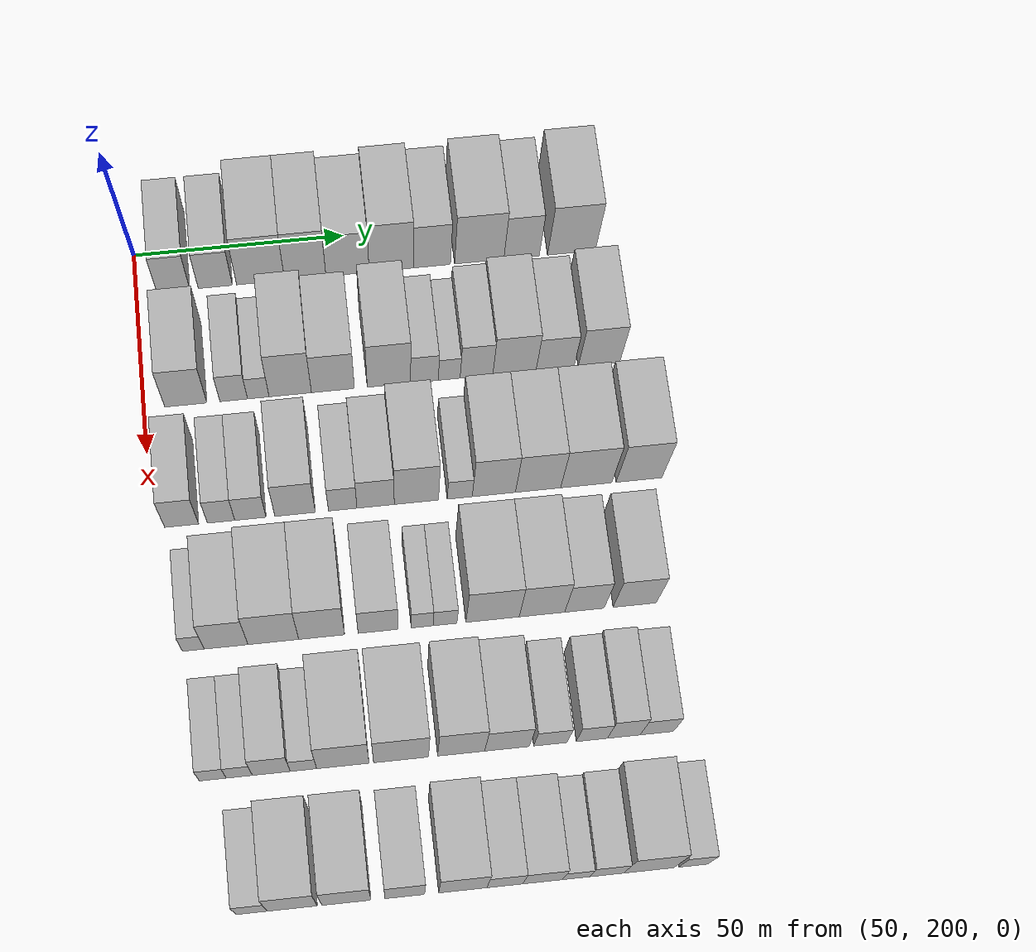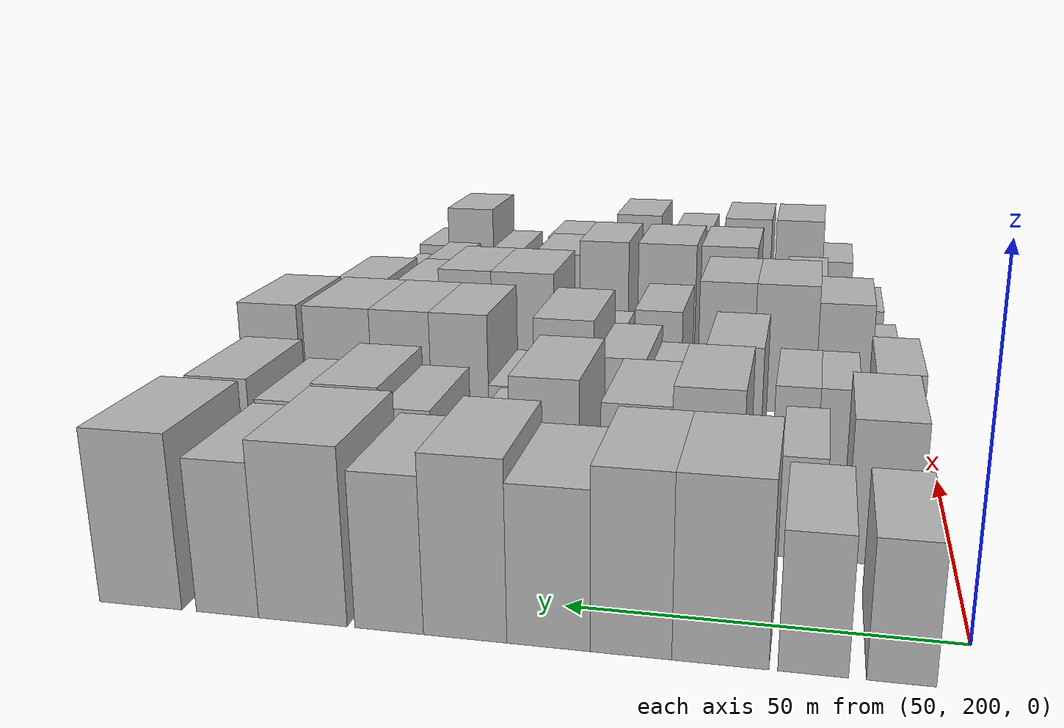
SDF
<sdf version="1.6">
 <world name="default">
  <model name="building_84">
   <static>1</static>
   <pose>50.0000 208.6425 0 0.000000 0.000000 0.000000</pose>
   <link name="link">
    <pose>0 0 9.00 0 0 0</pose>
    <collision name="collision"><geometry><box><size>20.0000 7.8044 18.0000</size></box></geometry></collision>
    <visual name="visual">
     <cast_shadows>0</cast_shadows>
     <geometry><box><size>20.0000 7.8044 18.0000</size></box></geometry>
     <material>
      <script>
       <uri>model://HANNAS_wall/materials/scripts</uri>
       <uri>model://HANNAS_wall/materials/textures</uri>
       <name>vrc/HANNAS_wall</name>
      </script>
     </material>
    </visual>
   </link>
  </model>
  <model name="building_85">
   <static>1</static>
   <pose>50.0000 218.5856 0 0.000000 0.000000 0.000000</pose>
   <link name="link">
    <pose>0 0 9.00 0 0 0</pose>
    <collision name="collision"><geometry><box><size>20.0000 8.0818 18.0000</size></box></geometry></collision>
    <visual name="visual">
     <cast_shadows>0</cast_shadows>
     <geometry><box><size>20.0000 8.0818 18.0000</size></box></geometry>
     <material>
      <script>
       <uri>model://HANNAS_wall/materials/scripts</uri>
       <uri>model://HANNAS_wall/materials/textures</uri>
       <name>vrc/HANNAS_wall</name>
      </script>
     </material>
    </visual>
   </link>
  </model>
  <model name="building_86">
   <static>1</static>
   <pose>50.0000 229.3139 0 0.000000 0.000000 0.000000</pose>
   <link name="link">
    <pose>0 0 12.00 0 0 0</pose>
    <collision name="collision"><geometry><box><size>20.0000 11.3750 24.0000</size></box></geometry></collision>
    <visual name="visual">
     <cast_shadows>0</cast_shadows>
     <geometry><box><size>20.0000 11.3750 24.0000</size></box></geometry>
     <material>
      <script>
       <uri>model://HANNAS_wall/materials/scripts</uri>
       <uri>model://HANNAS_wall/materials/textures</uri>
       <name>vrc/HANNAS_wall</name>
      </script>
     </material>
    </visual>
   </link>
  </model>
  <model name="building_87">
   <static>1</static>
   <pose>50.0000 239.8991 0 0.000000 0.000000 0.000000</pose>
   <link name="link">
    <pose>0 0 12.00 0 0 0</pose>
    <collision name="collision"><geometry><box><size>20.0000 9.7954 24.0000</size></box></geometry></collision>
    <visual name="visual">
     <cast_shadows>0</cast_shadows>
     <geometry><box><size>20.0000 9.7954 24.0000</size></box></geometry>
     <material>
      <script>
       <uri>model://HANNAS_wall/materials/scripts</uri>
       <uri>model://HANNAS_wall/materials/textures</uri>
       <name>vrc/HANNAS_wall</name>
      </script>
     </material>
    </visual>
   </link>
  </model>
  <model name="building_88">
   <static>1</static>
   <pose>50.0000 249.9228 0 0.000000 0.000000 0.000000</pose>
   <link name="link">
    <pose>0 0 10.50 0 0 0</pose>
    <collision name="collision"><geometry><box><size>20.0000 10.2521 21.0000</size></box></geometry></collision>
    <visual name="visual">
     <cast_shadows>0</cast_shadows>
     <geometry><box><size>20.0000 10.2521 21.0000</size></box></geometry>
     <material>
      <script>
       <uri>model://HANNAS_wall/materials/scripts</uri>
       <uri>model://HANNAS_wall/materials/textures</uri>
       <name>vrc/HANNAS_wall</name>
      </script>
     </material>
    </visual>
   </link>
  </model>
  <model name="building_89">
   <static>1</static>
   <pose>50.0000 260.3077 0 0.000000 0.000000 0.000000</pose>
   <link name="link">
    <pose>0 0 12.00 0 0 0</pose>
    <collision name="collision"><geometry><box><size>20.0000 10.5177 24.0000</size></box></geometry></collision>
    <visual name="visual">
     <cast_shadows>0</cast_shadows>
     <geometry><box><size>20.0000 10.5177 24.0000</size></box></geometry>
     <material>
      <script>
       <uri>model://HANNAS_wall/materials/scripts</uri>
       <uri>model://HANNAS_wall/materials/textures</uri>
       <name>vrc/HANNAS_wall</name>
      </script>
     </material>
    </visual>
   </link>
  </model>
  <model name="building_90">
   <static>1</static>
   <pose>50.0000 269.9991 0 0.000000 0.000000 0.000000</pose>
   <link name="link">
    <pose>0 0 10.50 0 0 0</pose>
    <collision name="collision"><geometry><box><size>20.0000 8.8651 21.0000</size></box></geometry></collision>
    <visual name="visual">
     <cast_shadows>0</cast_shadows>
     <geometry><box><size>20.0000 8.8651 21.0000</size></box></geometry>
     <material>
      <script>
       <uri>model://HANNAS_wall/materials/scripts</uri>
       <uri>model://HANNAS_wall/materials/textures</uri>
       <name>vrc/HANNAS_wall</name>
      </script>
     </material>
    </visual>
   </link>
  </model>
  <model name="building_91">
   <static>1</static>
   <pose>50.0000 281.3059 0 0.000000 0.000000 0.000000</pose>
   <link name="link">
    <pose>0 0 12.00 0 0 0</pose>
    <collision name="collision"><geometry><box><size>20.0000 11.7485 24.0000</size></box></geometry></collision>
    <visual name="visual">
     <cast_shadows>0</cast_shadows>
     <geometry><box><size>20.0000 11.7485 24.0000</size></box></geometry>
     <material>
      <script>
       <uri>model://HANNAS_wall/materials/scripts</uri>
       <uri>model://HANNAS_wall/materials/textures</uri>
       <name>vrc/HANNAS_wall</name>
      </script>
     </material>
    </visual>
   </link>
  </model>
  <model name="building_92">
   <static>1</static>
   <pose>50.0000 291.4070 0 0.000000 0.000000 0.000000</pose>
   <link name="link">
    <pose>0 0 10.50 0 0 0</pose>
    <collision name="collision"><geometry><box><size>20.0000 8.4536 21.0000</size></box></geometry></collision>
    <visual name="visual">
     <cast_shadows>0</cast_shadows>
     <geometry><box><size>20.0000 8.4536 21.0000</size></box></geometry>
     <material>
      <script>
       <uri>model://HANNAS_wall/materials/scripts</uri>
       <uri>model://HANNAS_wall/materials/textures</uri>
       <name>vrc/HANNAS_wall</name>
      </script>
     </material>
    </visual>
   </link>
  </model>
  <model name="building_93">
   <static>1</static>
   <pose>50.0000 303.3628 0 0.000000 0.000000 0.000000</pose>
   <link name="link">
    <pose>0 0 12.00 0 0 0</pose>
    <collision name="collision"><geometry><box><size>20.0000 11.4581 24.0000</size></box></geometry></collision>
    <visual name="visual">
     <cast_shadows>0</cast_shadows>
     <geometry><box><size>20.0000 11.4581 24.0000</size></box></geometry>
     <material>
      <script>
       <uri>model://HANNAS_wall/materials/scripts</uri>
       <uri>model://HANNAS_wall/materials/textures</uri>
       <name>vrc/HANNAS_wall</name>
      </script>
     </material>
    </visual>
   </link>
  </model>
  <model name="building_189">
   <static>1</static>
   <pose>79.0000 209.6705 0 0.000000 0.000000 0.000000</pose>
   <link name="link">
    <pose>0 0 10.50 0 0 0</pose>
    <collision name="collision"><geometry><box><size>20.0000 9.7549 21.0000</size></box></geometry></collision>
    <visual name="visual">
     <cast_shadows>0</cast_shadows>
     <geometry><box><size>20.0000 9.7549 21.0000</size></box></geometry>
     <material>
      <script>
       <uri>model://HANNAS_wall/materials/scripts</uri>
       <uri>model://HANNAS_wall/materials/textures</uri>
       <name>vrc/HANNAS_wall</name>
      </script>
     </material>
    </visual>
   </link>
  </model>
  <model name="building_190">
   <static>1</static>
   <pose>79.0000 220.7451 0 0.000000 0.000000 0.000000</pose>
   <link name="link">
    <pose>0 0 7.50 0 0 0</pose>
    <collision name="collision"><geometry><box><size>20.0000 6.3942 15.0000</size></box></geometry></collision>
    <visual name="visual">
     <cast_shadows>0</cast_shadows>
     <geometry><box><size>20.0000 6.3942 15.0000</size></box></geometry>
     <material>
      <script>
       <uri>model://HANNAS_wall/materials/scripts</uri>
       <uri>model://HANNAS_wall/materials/textures</uri>
       <name>vrc/HANNAS_wall</name>
      </script>
     </material>
    </visual>
   </link>
  </model>
  <model name="building_191">
   <static>1</static>
   <pose>79.0000 226.4468 0 0.000000 0.000000 0.000000</pose>
   <link name="link">
    <pose>0 0 6.00 0 0 0</pose>
    <collision name="collision"><geometry><box><size>20.0000 5.0092 12.0000</size></box></geometry></collision>
    <visual name="visual">
     <cast_shadows>0</cast_shadows>
     <geometry><box><size>20.0000 5.0092 12.0000</size></box></geometry>
     <material>
      <script>
       <uri>model://HANNAS_wall/materials/scripts</uri>
       <uri>model://HANNAS_wall/materials/textures</uri>
       <name>vrc/HANNAS_wall</name>
      </script>
     </material>
    </visual>
   </link>
  </model>
  <model name="building_192">
   <static>1</static>
   <pose>79.0000 233.8729 0 0.000000 0.000000 0.000000</pose>
   <link name="link">
    <pose>0 0 12.00 0 0 0</pose>
    <collision name="collision"><geometry><box><size>20.0000 9.8429 24.0000</size></box></geometry></collision>
    <visual name="visual">
     <cast_shadows>0</cast_shadows>
     <geometry><box><size>20.0000 9.8429 24.0000</size></box></geometry>
     <material>
      <script>
       <uri>model://HANNAS_wall/materials/scripts</uri>
       <uri>model://HANNAS_wall/materials/textures</uri>
       <name>vrc/HANNAS_wall</name>
      </script>
     </material>
    </visual>
   </link>
  </model>
  <model name="building_193">
   <static>1</static>
   <pose>79.0000 243.7833 0 0.000000 0.000000 0.000000</pose>
   <link name="link">
    <pose>0 0 10.50 0 0 0</pose>
    <collision name="collision"><geometry><box><size>20.0000 9.9779 21.0000</size></box></geometry></collision>
    <visual name="visual">
     <cast_shadows>0</cast_shadows>
     <geometry><box><size>20.0000 9.9779 21.0000</size></box></geometry>
     <material>
      <script>
       <uri>model://HANNAS_wall/materials/scripts</uri>
       <uri>model://HANNAS_wall/materials/textures</uri>
       <name>vrc/HANNAS_wall</name>
      </script>
     </material>
    </visual>
   </link>
  </model>
  <model name="building_194">
   <static>1</static>
   <pose>79.0000 256.8206 0 0.000000 0.000000 0.000000</pose>
   <link name="link">
    <pose>0 0 12.00 0 0 0</pose>
    <collision name="collision"><geometry><box><size>20.0000 10.0967 24.0000</size></box></geometry></collision>
    <visual name="visual">
     <cast_shadows>0</cast_shadows>
     <geometry><box><size>20.0000 10.0967 24.0000</size></box></geometry>
     <material>
      <script>
       <uri>model://HANNAS_wall/materials/scripts</uri>
       <uri>model://HANNAS_wall/materials/textures</uri>
       <name>vrc/HANNAS_wall</name>
      </script>
     </material>
    </visual>
   </link>
  </model>
  <model name="building_195">
   <static>1</static>
   <pose>79.0000 265.1065 0 0.000000 0.000000 0.000000</pose>
   <link name="link">
    <pose>0 0 7.50 0 0 0</pose>
    <collision name="collision"><geometry><box><size>20.0000 6.4752 15.0000</size></box></geometry></collision>
    <visual name="visual">
     <cast_shadows>0</cast_shadows>
     <geometry><box><size>20.0000 6.4752 15.0000</size></box></geometry>
     <material>
      <script>
       <uri>model://HANNAS_wall/materials/scripts</uri>
       <uri>model://HANNAS_wall/materials/textures</uri>
       <name>vrc/HANNAS_wall</name>
      </script>
     </material>
    </visual>
   </link>
  </model>
  <model name="building_196">
   <static>1</static>
   <pose>79.0000 270.8845 0 0.000000 0.000000 0.000000</pose>
   <link name="link">
    <pose>0 0 6.00 0 0 0</pose>
    <collision name="collision"><geometry><box><size>20.0000 5.0808 12.0000</size></box></geometry></collision>
    <visual name="visual">
     <cast_shadows>0</cast_shadows>
     <geometry><box><size>20.0000 5.0808 12.0000</size></box></geometry>
     <material>
      <script>
       <uri>model://HANNAS_wall/materials/scripts</uri>
       <uri>model://HANNAS_wall/materials/textures</uri>
       <name>vrc/HANNAS_wall</name>
      </script>
     </material>
    </visual>
   </link>
  </model>
  <model name="building_197">
   <static>1</static>
   <pose>79.0000 277.2413 0 0.000000 0.000000 0.000000</pose>
   <link name="link">
    <pose>0 0 9.00 0 0 0</pose>
    <collision name="collision"><geometry><box><size>20.0000 7.6327 18.0000</size></box></geometry></collision>
    <visual name="visual">
     <cast_shadows>0</cast_shadows>
     <geometry><box><size>20.0000 7.6327 18.0000</size></box></geometry>
     <material>
      <script>
       <uri>model://HANNAS_wall/materials/scripts</uri>
       <uri>model://HANNAS_wall/materials/textures</uri>
       <name>vrc/HANNAS_wall</name>
      </script>
     </material>
    </visual>
   </link>
  </model>
  <model name="building_198">
   <static>1</static>
   <pose>79.0000 286.1260 0 0.000000 0.000000 0.000000</pose>
   <link name="link">
    <pose>0 0 10.50 0 0 0</pose>
    <collision name="collision"><geometry><box><size>20.0000 10.1367 21.0000</size></box></geometry></collision>
    <visual name="visual">
     <cast_shadows>0</cast_shadows>
     <geometry><box><size>20.0000 10.1367 21.0000</size></box></geometry>
     <material>
      <script>
       <uri>model://HANNAS_wall/materials/scripts</uri>
       <uri>model://HANNAS_wall/materials/textures</uri>
       <name>vrc/HANNAS_wall</name>
      </script>
     </material>
    </visual>
   </link>
  </model>
  <model name="building_199">
   <static>1</static>
   <pose>79.0000 295.6314 0 0.000000 0.000000 0.000000</pose>
   <link name="link">
    <pose>0 0 9.00 0 0 0</pose>
    <collision name="collision"><geometry><box><size>20.0000 8.8742 18.0000</size></box></geometry></collision>
    <visual name="visual">
     <cast_shadows>0</cast_shadows>
     <geometry><box><size>20.0000 8.8742 18.0000</size></box></geometry>
     <material>
      <script>
       <uri>model://HANNAS_wall/materials/scripts</uri>
       <uri>model://HANNAS_wall/materials/textures</uri>
       <name>vrc/HANNAS_wall</name>
      </script>
     </material>
    </visual>
   </link>
  </model>
  <model name="building_200">
   <static>1</static>
   <pose>79.0000 305.9397 0 0.000000 0.000000 0.000000</pose>
   <link name="link">
    <pose>0 0 10.50 0 0 0</pose>
    <collision name="collision"><geometry><box><size>20.0000 9.7422 21.0000</size></box></geometry></collision>
    <visual name="visual">
     <cast_shadows>0</cast_shadows>
     <geometry><box><size>20.0000 9.7422 21.0000</size></box></geometry>
     <material>
      <script>
       <uri>model://HANNAS_wall/materials/scripts</uri>
       <uri>model://HANNAS_wall/materials/textures</uri>
       <name>vrc/HANNAS_wall</name>
      </script>
     </material>
    </visual>
   </link>
  </model>
  <model name="building_296">
   <static>1</static>
   <pose>108.0000 206.7710 0 0.000000 0.000000 0.000000</pose>
   <link name="link">
    <pose>0 0 9.00 0 0 0</pose>
    <collision name="collision"><geometry><box><size>20.0000 7.6914 18.0000</size></box></geometry></collision>
    <visual name="visual">
     <cast_shadows>0</cast_shadows>
     <geometry><box><size>20.0000 7.6914 18.0000</size></box></geometry>
     <material>
      <script>
       <uri>model://HANNAS_wall/materials/scripts</uri>
       <uri>model://HANNAS_wall/materials/textures</uri>
       <name>vrc/HANNAS_wall</name>
      </script>
     </material>
    </visual>
   </link>
  </model>
  <model name="building_297">
   <static>1</static>
   <pose>108.0000 215.7208 0 0.000000 0.000000 0.000000</pose>
   <link name="link">
    <pose>0 0 7.50 0 0 0</pose>
    <collision name="collision"><geometry><box><size>20.0000 6.2083 15.0000</size></box></geometry></collision>
    <visual name="visual">
     <cast_shadows>0</cast_shadows>
     <geometry><box><size>20.0000 6.2083 15.0000</size></box></geometry>
     <material>
      <script>
       <uri>model://HANNAS_wall/materials/scripts</uri>
       <uri>model://HANNAS_wall/materials/textures</uri>
       <name>vrc/HANNAS_wall</name>
      </script>
     </material>
    </visual>
   </link>
  </model>
  <model name="building_298">
   <static>1</static>
   <pose>108.0000 222.3732 0 0.000000 0.000000 0.000000</pose>
   <link name="link">
    <pose>0 0 7.50 0 0 0</pose>
    <collision name="collision"><geometry><box><size>20.0000 7.0965 15.0000</size></box></geometry></collision>
    <visual name="visual">
     <cast_shadows>0</cast_shadows>
     <geometry><box><size>20.0000 7.0965 15.0000</size></box></geometry>
     <material>
      <script>
       <uri>model://HANNAS_wall/materials/scripts</uri>
       <uri>model://HANNAS_wall/materials/textures</uri>
       <name>vrc/HANNAS_wall</name>
      </script>
     </material>
    </visual>
   </link>
  </model>
  <model name="building_299">
   <static>1</static>
   <pose>108.0000 232.5104 0 0.000000 0.000000 0.000000</pose>
   <link name="link">
    <pose>0 0 10.50 0 0 0</pose>
    <collision name="collision"><geometry><box><size>20.0000 9.1779 21.0000</size></box></geometry></collision>
    <visual name="visual">
     <cast_shadows>0</cast_shadows>
     <geometry><box><size>20.0000 9.1779 21.0000</size></box></geometry>
     <material>
      <script>
       <uri>model://HANNAS_wall/materials/scripts</uri>
       <uri>model://HANNAS_wall/materials/textures</uri>
       <name>vrc/HANNAS_wall</name>
      </script>
     </material>
    </visual>
   </link>
  </model>
  <model name="building_300">
   <static>1</static>
   <pose>108.0000 243.3348 0 0.000000 0.000000 0.000000</pose>
   <link name="link">
    <pose>0 0 7.50 0 0 0</pose>
    <collision name="collision"><geometry><box><size>20.0000 6.4710 15.0000</size></box></geometry></collision>
    <visual name="visual">
     <cast_shadows>0</cast_shadows>
     <geometry><box><size>20.0000 6.4710 15.0000</size></box></geometry>
     <material>
      <script>
       <uri>model://HANNAS_wall/materials/scripts</uri>
       <uri>model://HANNAS_wall/materials/textures</uri>
       <name>vrc/HANNAS_wall</name>
      </script>
     </material>
    </visual>
   </link>
  </model>
  <model name="building_301">
   <static>1</static>
   <pose>108.0000 250.8264 0 0.000000 0.000000 0.000000</pose>
   <link name="link">
    <pose>0 0 9.00 0 0 0</pose>
    <collision name="collision"><geometry><box><size>20.0000 8.5123 18.0000</size></box></geometry></collision>
    <visual name="visual">
     <cast_shadows>0</cast_shadows>
     <geometry><box><size>20.0000 8.5123 18.0000</size></box></geometry>
     <material>
      <script>
       <uri>model://HANNAS_wall/materials/scripts</uri>
       <uri>model://HANNAS_wall/materials/textures</uri>
       <name>vrc/HANNAS_wall</name>
      </script>
     </material>
    </visual>
   </link>
  </model>
  <model name="building_302">
   <static>1</static>
   <pose>108.0000 260.1280 0 0.000000 0.000000 0.000000</pose>
   <link name="link">
    <pose>0 0 12.00 0 0 0</pose>
    <collision name="collision"><geometry><box><size>20.0000 10.0909 24.0000</size></box></geometry></collision>
    <visual name="visual">
     <cast_shadows>0</cast_shadows>
     <geometry><box><size>20.0000 10.0909 24.0000</size></box></geometry>
     <material>
      <script>
       <uri>model://HANNAS_wall/materials/scripts</uri>
       <uri>model://HANNAS_wall/materials/textures</uri>
       <name>vrc/HANNAS_wall</name>
      </script>
     </material>
    </visual>
   </link>
  </model>
  <model name="building_303">
   <static>1</static>
   <pose>108.0000 270.0269 0 0.000000 0.000000 0.000000</pose>
   <link name="link">
    <pose>0 0 6.00 0 0 0</pose>
    <collision name="collision"><geometry><box><size>20.0000 5.7069 12.0000</size></box></geometry></collision>
    <visual name="visual">
     <cast_shadows>0</cast_shadows>
     <geometry><box><size>20.0000 5.7069 12.0000</size></box></geometry>
     <material>
      <script>
       <uri>model://HANNAS_wall/materials/scripts</uri>
       <uri>model://HANNAS_wall/materials/textures</uri>
       <name>vrc/HANNAS_wall</name>
      </script>
     </material>
    </visual>
   </link>
  </model>
  <model name="building_304">
   <static>1</static>
   <pose>108.0000 277.8315 0 0.000000 0.000000 0.000000</pose>
   <link name="link">
    <pose>0 0 12.00 0 0 0</pose>
    <collision name="collision"><geometry><box><size>20.0000 9.9023 24.0000</size></box></geometry></collision>
    <visual name="visual">
     <cast_shadows>0</cast_shadows>
     <geometry><box><size>20.0000 9.9023 24.0000</size></box></geometry>
     <material>
      <script>
       <uri>model://HANNAS_wall/materials/scripts</uri>
       <uri>model://HANNAS_wall/materials/textures</uri>
       <name>vrc/HANNAS_wall</name>
      </script>
     </material>
    </visual>
   </link>
  </model>
  <model name="building_305">
   <static>1</static>
   <pose>108.0000 287.9648 0 0.000000 0.000000 0.000000</pose>
   <link name="link">
    <pose>0 0 12.00 0 0 0</pose>
    <collision name="collision"><geometry><box><size>20.0000 10.3641 24.0000</size></box></geometry></collision>
    <visual name="visual">
     <cast_shadows>0</cast_shadows>
     <geometry><box><size>20.0000 10.3641 24.0000</size></box></geometry>
     <material>
      <script>
       <uri>model://HANNAS_wall/materials/scripts</uri>
       <uri>model://HANNAS_wall/materials/textures</uri>
       <name>vrc/HANNAS_wall</name>
      </script>
     </material>
    </visual>
   </link>
  </model>
  <model name="building_306">
   <static>1</static>
   <pose>108.0000 299.0177 0 0.000000 0.000000 0.000000</pose>
   <link name="link">
    <pose>0 0 12.00 0 0 0</pose>
    <collision name="collision"><geometry><box><size>20.0000 11.7417 24.0000</size></box></geometry></collision>
    <visual name="visual">
     <cast_shadows>0</cast_shadows>
     <geometry><box><size>20.0000 11.7417 24.0000</size></box></geometry>
     <material>
      <script>
       <uri>model://HANNAS_wall/materials/scripts</uri>
       <uri>model://HANNAS_wall/materials/textures</uri>
       <name>vrc/HANNAS_wall</name>
      </script>
     </material>
    </visual>
   </link>
  </model>
  <model name="building_307">
   <static>1</static>
   <pose>108.0000 311.1563 0 0.000000 0.000000 0.000000</pose>
   <link name="link">
    <pose>0 0 12.00 0 0 0</pose>
    <collision name="collision"><geometry><box><size>20.0000 10.5354 24.0000</size></box></geometry></collision>
    <visual name="visual">
     <cast_shadows>0</cast_shadows>
     <geometry><box><size>20.0000 10.5354 24.0000</size></box></geometry>
     <material>
      <script>
       <uri>model://HANNAS_wall/materials/scripts</uri>
       <uri>model://HANNAS_wall/materials/textures</uri>
       <name>vrc/HANNAS_wall</name>
      </script>
     </material>
    </visual>
   </link>
  </model>
  <model name="building_409">
   <static>1</static>
   <pose>137.0000 207.4290 0 0.000000 0.000000 0.000000</pose>
   <link name="link">
    <pose>0 0 6.00 0 0 0</pose>
    <collision name="collision"><geometry><box><size>20.0000 4.8108 12.0000</size></box></geometry></collision>
    <visual name="visual">
     <cast_shadows>0</cast_shadows>
     <geometry><box><size>20.0000 4.8108 12.0000</size></box></geometry>
     <material>
      <script>
       <uri>model://HANNAS_wall/materials/scripts</uri>
       <uri>model://HANNAS_wall/materials/textures</uri>
       <name>vrc/HANNAS_wall</name>
      </script>
     </material>
    </visual>
   </link>
  </model>
  <model name="building_410">
   <static>1</static>
   <pose>137.0000 214.6970 0 0.000000 0.000000 0.000000</pose>
   <link name="link">
    <pose>0 0 10.50 0 0 0</pose>
    <collision name="collision"><geometry><box><size>20.0000 9.7251 21.0000</size></box></geometry></collision>
    <visual name="visual">
     <cast_shadows>0</cast_shadows>
     <geometry><box><size>20.0000 9.7251 21.0000</size></box></geometry>
     <material>
      <script>
       <uri>model://HANNAS_wall/materials/scripts</uri>
       <uri>model://HANNAS_wall/materials/textures</uri>
       <name>vrc/HANNAS_wall</name>
      </script>
     </material>
    </visual>
   </link>
  </model>
  <model name="building_411">
   <static>1</static>
   <pose>137.0000 225.1797 0 0.000000 0.000000 0.000000</pose>
   <link name="link">
    <pose>0 0 12.00 0 0 0</pose>
    <collision name="collision"><geometry><box><size>20.0000 11.2403 24.0000</size></box></geometry></collision>
    <visual name="visual">
     <cast_shadows>0</cast_shadows>
     <geometry><box><size>20.0000 11.2403 24.0000</size></box></geometry>
     <material>
      <script>
       <uri>model://HANNAS_wall/materials/scripts</uri>
       <uri>model://HANNAS_wall/materials/textures</uri>
       <name>vrc/HANNAS_wall</name>
      </script>
     </material>
    </visual>
   </link>
  </model>
  <model name="building_412">
   <static>1</static>
   <pose>137.0000 235.9193 0 0.000000 0.000000 0.000000</pose>
   <link name="link">
    <pose>0 0 12.00 0 0 0</pose>
    <collision name="collision"><geometry><box><size>20.0000 10.2388 24.0000</size></box></geometry></collision>
    <visual name="visual">
     <cast_shadows>0</cast_shadows>
     <geometry><box><size>20.0000 10.2388 24.0000</size></box></geometry>
     <material>
      <script>
       <uri>model://HANNAS_wall/materials/scripts</uri>
       <uri>model://HANNAS_wall/materials/textures</uri>
       <name>vrc/HANNAS_wall</name>
      </script>
     </material>
    </visual>
   </link>
  </model>
  <model name="building_413">
   <static>1</static>
   <pose>137.0000 248.4658 0 0.000000 0.000000 0.000000</pose>
   <link name="link">
    <pose>0 0 9.00 0 0 0</pose>
    <collision name="collision"><geometry><box><size>20.0000 8.8541 18.0000</size></box></geometry></collision>
    <visual name="visual">
     <cast_shadows>0</cast_shadows>
     <geometry><box><size>20.0000 8.8541 18.0000</size></box></geometry>
     <material>
      <script>
       <uri>model://HANNAS_wall/materials/scripts</uri>
       <uri>model://HANNAS_wall/materials/textures</uri>
       <name>vrc/HANNAS_wall</name>
      </script>
     </material>
    </visual>
   </link>
  </model>
  <model name="building_414">
   <static>1</static>
   <pose>137.0000 258.3368 0 0.000000 0.000000 0.000000</pose>
   <link name="link">
    <pose>0 0 6.00 0 0 0</pose>
    <collision name="collision"><geometry><box><size>20.0000 4.8878 12.0000</size></box></geometry></collision>
    <visual name="visual">
     <cast_shadows>0</cast_shadows>
     <geometry><box><size>20.0000 4.8878 12.0000</size></box></geometry>
     <material>
      <script>
       <uri>model://HANNAS_wall/materials/scripts</uri>
       <uri>model://HANNAS_wall/materials/textures</uri>
       <name>vrc/HANNAS_wall</name>
      </script>
     </material>
    </visual>
   </link>
  </model>
  <model name="building_415">
   <static>1</static>
   <pose>137.0000 263.4349 0 0.000000 0.000000 0.000000</pose>
   <link name="link">
    <pose>0 0 6.00 0 0 0</pose>
    <collision name="collision"><geometry><box><size>20.0000 5.3084 12.0000</size></box></geometry></collision>
    <visual name="visual">
     <cast_shadows>0</cast_shadows>
     <geometry><box><size>20.0000 5.3084 12.0000</size></box></geometry>
     <material>
      <script>
       <uri>model://HANNAS_wall/materials/scripts</uri>
       <uri>model://HANNAS_wall/materials/textures</uri>
       <name>vrc/HANNAS_wall</name>
      </script>
     </material>
    </visual>
   </link>
  </model>
  <model name="building_416">
   <static>1</static>
   <pose>137.0000 274.0593 0 0.000000 0.000000 0.000000</pose>
   <link name="link">
    <pose>0 0 12.00 0 0 0</pose>
    <collision name="collision"><geometry><box><size>20.0000 11.9404 24.0000</size></box></geometry></collision>
    <visual name="visual">
     <cast_shadows>0</cast_shadows>
     <geometry><box><size>20.0000 11.9404 24.0000</size></box></geometry>
     <material>
      <script>
       <uri>model://HANNAS_wall/materials/scripts</uri>
       <uri>model://HANNAS_wall/materials/textures</uri>
       <name>vrc/HANNAS_wall</name>
      </script>
     </material>
    </visual>
   </link>
  </model>
  <model name="building_417">
   <static>1</static>
   <pose>137.0000 285.1350 0 0.000000 0.000000 0.000000</pose>
   <link name="link">
    <pose>0 0 12.00 0 0 0</pose>
    <collision name="collision"><geometry><box><size>20.0000 10.2109 24.0000</size></box></geometry></collision>
    <visual name="visual">
     <cast_shadows>0</cast_shadows>
     <geometry><box><size>20.0000 10.2109 24.0000</size></box></geometry>
     <material>
      <script>
       <uri>model://HANNAS_wall/materials/scripts</uri>
       <uri>model://HANNAS_wall/materials/textures</uri>
       <name>vrc/HANNAS_wall</name>
      </script>
     </material>
    </visual>
   </link>
  </model>
  <model name="building_418">
   <static>1</static>
   <pose>137.0000 294.6801 0 0.000000 0.000000 0.000000</pose>
   <link name="link">
    <pose>0 0 10.50 0 0 0</pose>
    <collision name="collision"><geometry><box><size>20.0000 8.8795 21.0000</size></box></geometry></collision>
    <visual name="visual">
     <cast_shadows>0</cast_shadows>
     <geometry><box><size>20.0000 8.8795 21.0000</size></box></geometry>
     <material>
      <script>
       <uri>model://HANNAS_wall/materials/scripts</uri>
       <uri>model://HANNAS_wall/materials/textures</uri>
       <name>vrc/HANNAS_wall</name>
      </script>
     </material>
    </visual>
   </link>
  </model>
  <model name="building_419">
   <static>1</static>
   <pose>137.0000 305.9805 0 0.000000 0.000000 0.000000</pose>
   <link name="link">
    <pose>0 0 10.50 0 0 0</pose>
    <collision name="collision"><geometry><box><size>20.0000 9.7212 21.0000</size></box></geometry></collision>
    <visual name="visual">
     <cast_shadows>0</cast_shadows>
     <geometry><box><size>20.0000 9.7212 21.0000</size></box></geometry>
     <material>
      <script>
       <uri>model://HANNAS_wall/materials/scripts</uri>
       <uri>model://HANNAS_wall/materials/textures</uri>
       <name>vrc/HANNAS_wall</name>
      </script>
     </material>
    </visual>
   </link>
  </model>
  <model name="building_526">
   <static>1</static>
   <pose>166.0000 209.6998 0 0.000000 0.000000 0.000000</pose>
   <link name="link">
    <pose>0 0 6.00 0 0 0</pose>
    <collision name="collision"><geometry><box><size>20.0000 5.8388 12.0000</size></box></geometry></collision>
    <visual name="visual">
     <cast_shadows>0</cast_shadows>
     <geometry><box><size>20.0000 5.8388 12.0000</size></box></geometry>
     <material>
      <script>
       <uri>model://HANNAS_wall/materials/scripts</uri>
       <uri>model://HANNAS_wall/materials/textures</uri>
       <name>vrc/HANNAS_wall</name>
      </script>
     </material>
    </visual>
   </link>
  </model>
  <model name="building_527">
   <static>1</static>
   <pose>166.0000 215.4416 0 0.000000 0.000000 0.000000</pose>
   <link name="link">
    <pose>0 0 6.00 0 0 0</pose>
    <collision name="collision"><geometry><box><size>20.0000 5.6448 12.0000</size></box></geometry></collision>
    <visual name="visual">
     <cast_shadows>0</cast_shadows>
     <geometry><box><size>20.0000 5.6448 12.0000</size></box></geometry>
     <material>
      <script>
       <uri>model://HANNAS_wall/materials/scripts</uri>
       <uri>model://HANNAS_wall/materials/textures</uri>
       <name>vrc/HANNAS_wall</name>
      </script>
     </material>
    </visual>
   </link>
  </model>
  <model name="building_528">
   <static>1</static>
   <pose>166.0000 222.3700 0 0.000000 0.000000 0.000000</pose>
   <link name="link">
    <pose>0 0 9.00 0 0 0</pose>
    <collision name="collision"><geometry><box><size>20.0000 8.2121 18.0000</size></box></geometry></collision>
    <visual name="visual">
     <cast_shadows>0</cast_shadows>
     <geometry><box><size>20.0000 8.2121 18.0000</size></box></geometry>
     <material>
      <script>
       <uri>model://HANNAS_wall/materials/scripts</uri>
       <uri>model://HANNAS_wall/materials/textures</uri>
       <name>vrc/HANNAS_wall</name>
      </script>
     </material>
    </visual>
   </link>
  </model>
  <model name="building_529">
   <static>1</static>
   <pose>166.0000 229.3432 0 0.000000 0.000000 0.000000</pose>
   <link name="link">
    <pose>0 0 6.00 0 0 0</pose>
    <collision name="collision"><geometry><box><size>20.0000 5.7342 12.0000</size></box></geometry></collision>
    <visual name="visual">
     <cast_shadows>0</cast_shadows>
     <geometry><box><size>20.0000 5.7342 12.0000</size></box></geometry>
     <material>
      <script>
       <uri>model://HANNAS_wall/materials/scripts</uri>
       <uri>model://HANNAS_wall/materials/textures</uri>
       <name>vrc/HANNAS_wall</name>
      </script>
     </material>
    </visual>
   </link>
  </model>
  <model name="building_530">
   <static>1</static>
   <pose>166.0000 237.9088 0 0.000000 0.000000 0.000000</pose>
   <link name="link">
    <pose>0 0 12.00 0 0 0</pose>
    <collision name="collision"><geometry><box><size>20.0000 11.3969 24.0000</size></box></geometry></collision>
    <visual name="visual">
     <cast_shadows>0</cast_shadows>
     <geometry><box><size>20.0000 11.3969 24.0000</size></box></geometry>
     <material>
      <script>
       <uri>model://HANNAS_wall/materials/scripts</uri>
       <uri>model://HANNAS_wall/materials/textures</uri>
       <name>vrc/HANNAS_wall</name>
      </script>
     </material>
    </visual>
   </link>
  </model>
  <model name="building_531">
   <static>1</static>
   <pose>166.0000 250.5976 0 0.000000 0.000000 0.000000</pose>
   <link name="link">
    <pose>0 0 12.00 0 0 0</pose>
    <collision name="collision"><geometry><box><size>20.0000 11.9808 24.0000</size></box></geometry></collision>
    <visual name="visual">
     <cast_shadows>0</cast_shadows>
     <geometry><box><size>20.0000 11.9808 24.0000</size></box></geometry>
     <material>
      <script>
       <uri>model://HANNAS_wall/materials/scripts</uri>
       <uri>model://HANNAS_wall/materials/textures</uri>
       <name>vrc/HANNAS_wall</name>
      </script>
     </material>
    </visual>
   </link>
  </model>
  <model name="building_532">
   <static>1</static>
   <pose>166.0000 263.7345 0 0.000000 0.000000 0.000000</pose>
   <link name="link">
    <pose>0 0 12.00 0 0 0</pose>
    <collision name="collision"><geometry><box><size>20.0000 10.2930 24.0000</size></box></geometry></collision>
    <visual name="visual">
     <cast_shadows>0</cast_shadows>
     <geometry><box><size>20.0000 10.2930 24.0000</size></box></geometry>
     <material>
      <script>
       <uri>model://HANNAS_wall/materials/scripts</uri>
       <uri>model://HANNAS_wall/materials/textures</uri>
       <name>vrc/HANNAS_wall</name>
      </script>
     </material>
    </visual>
   </link>
  </model>
  <model name="building_533">
   <static>1</static>
   <pose>166.0000 273.7417 0 0.000000 0.000000 0.000000</pose>
   <link name="link">
    <pose>0 0 10.50 0 0 0</pose>
    <collision name="collision"><geometry><box><size>20.0000 9.7213 21.0000</size></box></geometry></collision>
    <visual name="visual">
     <cast_shadows>0</cast_shadows>
     <geometry><box><size>20.0000 9.7213 21.0000</size></box></geometry>
     <material>
      <script>
       <uri>model://HANNAS_wall/materials/scripts</uri>
       <uri>model://HANNAS_wall/materials/textures</uri>
       <name>vrc/HANNAS_wall</name>
      </script>
     </material>
    </visual>
   </link>
  </model>
  <model name="building_534">
   <static>1</static>
   <pose>166.0000 283.2781 0 0.000000 0.000000 0.000000</pose>
   <link name="link">
    <pose>0 0 7.50 0 0 0</pose>
    <collision name="collision"><geometry><box><size>20.0000 7.3516 15.0000</size></box></geometry></collision>
    <visual name="visual">
     <cast_shadows>0</cast_shadows>
     <geometry><box><size>20.0000 7.3516 15.0000</size></box></geometry>
     <material>
      <script>
       <uri>model://HANNAS_wall/materials/scripts</uri>
       <uri>model://HANNAS_wall/materials/textures</uri>
       <name>vrc/HANNAS_wall</name>
      </script>
     </material>
    </visual>
   </link>
  </model>
  <model name="building_535">
   <static>1</static>
   <pose>166.0000 292.3853 0 0.000000 0.000000 0.000000</pose>
   <link name="link">
    <pose>0 0 7.50 0 0 0</pose>
    <collision name="collision"><geometry><box><size>20.0000 6.8627 15.0000</size></box></geometry></collision>
    <visual name="visual">
     <cast_shadows>0</cast_shadows>
     <geometry><box><size>20.0000 6.8627 15.0000</size></box></geometry>
     <material>
      <script>
       <uri>model://HANNAS_wall/materials/scripts</uri>
       <uri>model://HANNAS_wall/materials/textures</uri>
       <name>vrc/HANNAS_wall</name>
      </script>
     </material>
    </visual>
   </link>
  </model>
  <model name="building_536">
   <static>1</static>
   <pose>166.0000 299.4213 0 0.000000 0.000000 0.000000</pose>
   <link name="link">
    <pose>0 0 9.00 0 0 0</pose>
    <collision name="collision"><geometry><box><size>20.0000 7.2092 18.0000</size></box></geometry></collision>
    <visual name="visual">
     <cast_shadows>0</cast_shadows>
     <geometry><box><size>20.0000 7.2092 18.0000</size></box></geometry>
     <material>
      <script>
       <uri>model://HANNAS_wall/materials/scripts</uri>
       <uri>model://HANNAS_wall/materials/textures</uri>
       <name>vrc/HANNAS_wall</name>
      </script>
     </material>
    </visual>
   </link>
  </model>
  <model name="building_537">
   <static>1</static>
   <pose>166.0000 306.6991 0 0.000000 0.000000 0.000000</pose>
   <link name="link">
    <pose>0 0 7.50 0 0 0</pose>
    <collision name="collision"><geometry><box><size>20.0000 7.3464 15.0000</size></box></geometry></collision>
    <visual name="visual">
     <cast_shadows>0</cast_shadows>
     <geometry><box><size>20.0000 7.3464 15.0000</size></box></geometry>
     <material>
      <script>
       <uri>model://HANNAS_wall/materials/scripts</uri>
       <uri>model://HANNAS_wall/materials/textures</uri>
       <name>vrc/HANNAS_wall</name>
      </script>
     </material>
    </visual>
   </link>
  </model>
  <model name="building_647">
   <static>1</static>
   <pose>195.0000 215.8931 0 0.000000 0.000000 0.000000</pose>
   <link name="link">
    <pose>0 0 7.50 0 0 0</pose>
    <collision name="collision"><geometry><box><size>20.0000 6.6479 15.0000</size></box></geometry></collision>
    <visual name="visual">
     <cast_shadows>0</cast_shadows>
     <geometry><box><size>20.0000 6.6479 15.0000</size></box></geometry>
     <material>
      <script>
       <uri>model://HANNAS_wall/materials/scripts</uri>
       <uri>model://HANNAS_wall/materials/textures</uri>
       <name>vrc/HANNAS_wall</name>
      </script>
     </material>
    </visual>
   </link>
  </model>
  <model name="building_648">
   <static>1</static>
   <pose>195.0000 224.4897 0 0.000000 0.000000 0.000000</pose>
   <link name="link">
    <pose>0 0 12.00 0 0 0</pose>
    <collision name="collision"><geometry><box><size>20.0000 10.5452 24.0000</size></box></geometry></collision>
    <visual name="visual">
     <cast_shadows>0</cast_shadows>
     <geometry><box><size>20.0000 10.5452 24.0000</size></box></geometry>
     <material>
      <script>
       <uri>model://HANNAS_wall/materials/scripts</uri>
       <uri>model://HANNAS_wall/materials/textures</uri>
       <name>vrc/HANNAS_wall</name>
      </script>
     </material>
    </visual>
   </link>
  </model>
  <model name="building_649">
   <static>1</static>
   <pose>195.0000 235.9671 0 0.000000 0.000000 0.000000</pose>
   <link name="link">
    <pose>0 0 12.00 0 0 0</pose>
    <collision name="collision"><geometry><box><size>20.0000 10.4097 24.0000</size></box></geometry></collision>
    <visual name="visual">
     <cast_shadows>0</cast_shadows>
     <geometry><box><size>20.0000 10.4097 24.0000</size></box></geometry>
     <material>
      <script>
       <uri>model://HANNAS_wall/materials/scripts</uri>
       <uri>model://HANNAS_wall/materials/textures</uri>
       <name>vrc/HANNAS_wall</name>
      </script>
     </material>
    </visual>
   </link>
  </model>
  <model name="building_650">
   <static>1</static>
   <pose>195.0000 248.3887 0 0.000000 0.000000 0.000000</pose>
   <link name="link">
    <pose>0 0 10.50 0 0 0</pose>
    <collision name="collision"><geometry><box><size>20.0000 8.4333 21.0000</size></box></geometry></collision>
    <visual name="visual">
     <cast_shadows>0</cast_shadows>
     <geometry><box><size>20.0000 8.4333 21.0000</size></box></geometry>
     <material>
      <script>
       <uri>model://HANNAS_wall/materials/scripts</uri>
       <uri>model://HANNAS_wall/materials/textures</uri>
       <name>vrc/HANNAS_wall</name>
      </script>
     </material>
    </visual>
   </link>
  </model>
  <model name="building_651">
   <static>1</static>
   <pose>195.0000 260.7463 0 0.000000 0.000000 0.000000</pose>
   <link name="link">
    <pose>0 0 12.00 0 0 0</pose>
    <collision name="collision"><geometry><box><size>20.0000 10.2820 24.0000</size></box></geometry></collision>
    <visual name="visual">
     <cast_shadows>0</cast_shadows>
     <geometry><box><size>20.0000 10.2820 24.0000</size></box></geometry>
     <material>
      <script>
       <uri>model://HANNAS_wall/materials/scripts</uri>
       <uri>model://HANNAS_wall/materials/textures</uri>
       <name>vrc/HANNAS_wall</name>
      </script>
     </material>
    </visual>
   </link>
  </model>
  <model name="building_652">
   <static>1</static>
   <pose>195.0000 269.7312 0 0.000000 0.000000 0.000000</pose>
   <link name="link">
    <pose>0 0 9.00 0 0 0</pose>
    <collision name="collision"><geometry><box><size>20.0000 7.6879 18.0000</size></box></geometry></collision>
    <visual name="visual">
     <cast_shadows>0</cast_shadows>
     <geometry><box><size>20.0000 7.6879 18.0000</size></box></geometry>
     <material>
      <script>
       <uri>model://HANNAS_wall/materials/scripts</uri>
       <uri>model://HANNAS_wall/materials/textures</uri>
       <name>vrc/HANNAS_wall</name>
      </script>
     </material>
    </visual>
   </link>
  </model>
  <model name="building_653">
   <static>1</static>
   <pose>195.0000 277.8370 0 0.000000 0.000000 0.000000</pose>
   <link name="link">
    <pose>0 0 9.00 0 0 0</pose>
    <collision name="collision"><geometry><box><size>20.0000 8.5236 18.0000</size></box></geometry></collision>
    <visual name="visual">
     <cast_shadows>0</cast_shadows>
     <geometry><box><size>20.0000 8.5236 18.0000</size></box></geometry>
     <material>
      <script>
       <uri>model://HANNAS_wall/materials/scripts</uri>
       <uri>model://HANNAS_wall/materials/textures</uri>
       <name>vrc/HANNAS_wall</name>
      </script>
     </material>
    </visual>
   </link>
  </model>
  <model name="building_654">
   <static>1</static>
   <pose>195.0000 285.0286 0 0.000000 0.000000 0.000000</pose>
   <link name="link">
    <pose>0 0 6.00 0 0 0</pose>
    <collision name="collision"><geometry><box><size>20.0000 5.8597 12.0000</size></box></geometry></collision>
    <visual name="visual">
     <cast_shadows>0</cast_shadows>
     <geometry><box><size>20.0000 5.8597 12.0000</size></box></geometry>
     <material>
      <script>
       <uri>model://HANNAS_wall/materials/scripts</uri>
       <uri>model://HANNAS_wall/materials/textures</uri>
       <name>vrc/HANNAS_wall</name>
      </script>
     </material>
    </visual>
   </link>
  </model>
  <model name="building_655">
   <static>1</static>
   <pose>195.0000 291.6113 0 0.000000 0.000000 0.000000</pose>
   <link name="link">
    <pose>0 0 7.50 0 0 0</pose>
    <collision name="collision"><geometry><box><size>20.0000 7.3057 15.0000</size></box></geometry></collision>
    <visual name="visual">
     <cast_shadows>0</cast_shadows>
     <geometry><box><size>20.0000 7.3057 15.0000</size></box></geometry>
     <material>
      <script>
       <uri>model://HANNAS_wall/materials/scripts</uri>
       <uri>model://HANNAS_wall/materials/textures</uri>
       <name>vrc/HANNAS_wall</name>
      </script>
     </material>
    </visual>
   </link>
  </model>
  <model name="building_656">
   <static>1</static>
   <pose>195.0000 300.6791 0 0.000000 0.000000 0.000000</pose>
   <link name="link">
    <pose>0 0 12.00 0 0 0</pose>
    <collision name="collision"><geometry><box><size>20.0000 10.8299 24.0000</size></box></geometry></collision>
    <visual name="visual">
     <cast_shadows>0</cast_shadows>
     <geometry><box><size>20.0000 10.8299 24.0000</size></box></geometry>
     <material>
      <script>
       <uri>model://HANNAS_wall/materials/scripts</uri>
       <uri>model://HANNAS_wall/materials/textures</uri>
       <name>vrc/HANNAS_wall</name>
      </script>
     </material>
    </visual>
   </link>
  </model>
  <model name="building_657">
   <static>1</static>
   <pose>195.0000 310.2174 0 0.000000 0.000000 0.000000</pose>
   <link name="link">
    <pose>0 0 7.50 0 0 0</pose>
    <collision name="collision"><geometry><box><size>20.0000 6.2468 15.0000</size></box></geometry></collision>
    <visual name="visual">
     <cast_shadows>0</cast_shadows>
     <geometry><box><size>20.0000 6.2468 15.0000</size></box></geometry>
     <material>
      <script>
       <uri>model://HANNAS_wall/materials/scripts</uri>
       <uri>model://HANNAS_wall/materials/textures</uri>
       <name>vrc/HANNAS_wall</name>
      </script>
     </material>
    </visual>
   </link>
  </model>
 </world>
</sdf>
